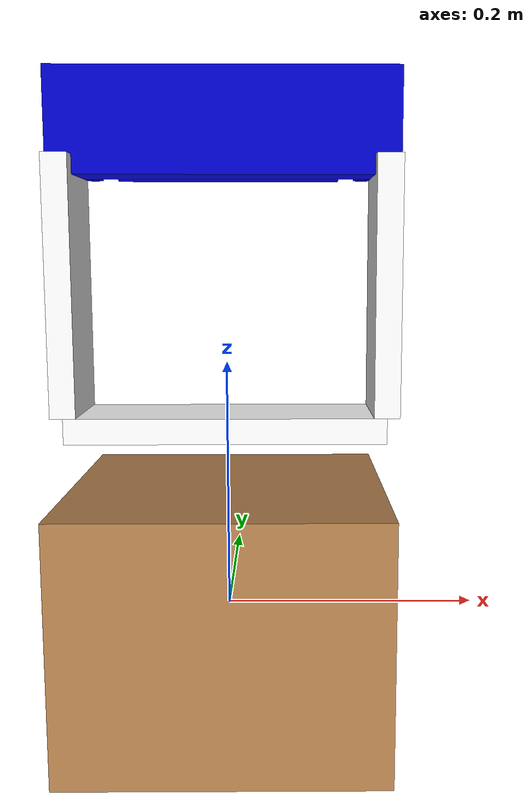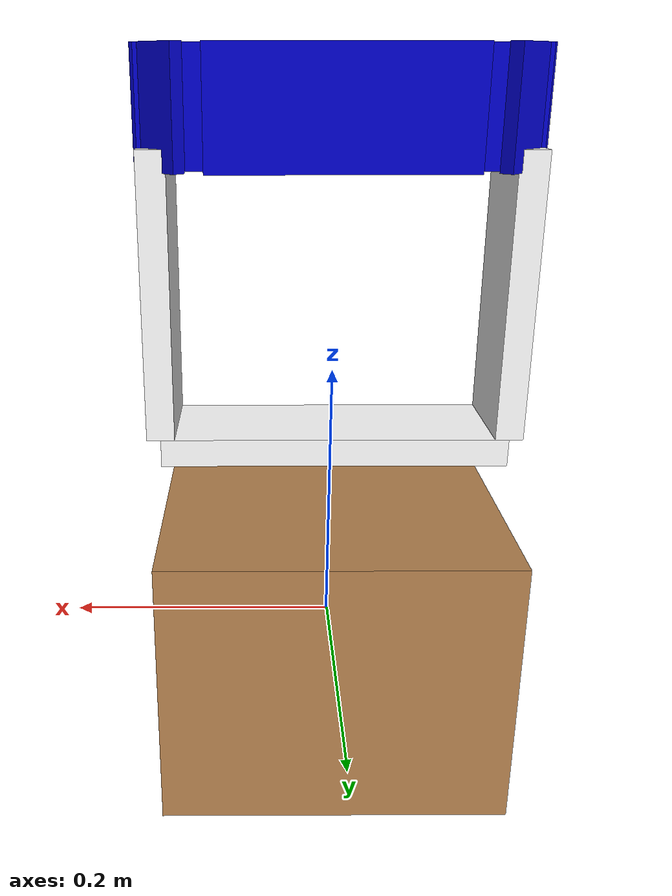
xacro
<?xml version="1.0"?>
<robot name="motor_test" xmlns:xacro="http://www.ros.org/wiki/xacro">

  <!-- Base box -->
  <link name="base_link">
    <visual>
      <geometry>
        <box size="0.25 0.25 0.2"/>
      </geometry>
      <origin xyz="0 0 0" rpy="0 0 0"/>
      <material name="wood">
        <color rgba="0.7 0.5 0.3 1.0"/>
      </material>
    </visual>
  </link>

  <!-- Rotating horizontal bar -->
  <link name="bar_link">
    <visual>
      <geometry>
        <box size="0.25 0.08 0.02"/>
      </geometry>
      <origin xyz="0 0 0" rpy="0 0 0"/>
      <material name="white">
        <color rgba="1 1 1 1"/>
      </material>
    </visual>
  </link>

  <!-- Revolute joint connecting base to bar -->
  <joint name="base_to_bar" type="revolute">
    <parent link="base_link"/>
    <child link="bar_link"/>
    <origin xyz="0 0 0.15" rpy="0 0 0"/>
    <axis xyz="0 0 1"/>
    <limit lower="-3.14" upper="3.14" effort="10" velocity="1.0"/>
  </joint>

  <!--      LEFT vertical bar          -->
  <link name="left_vertical_bar">
    <visual>
      <geometry>
        <box size="0.02 0.08 0.20"/>  <!-- width, depth, height -->
      </geometry>
      <origin xyz="0 0 0" rpy="0 0 0"/>
      <material name="white">
        <color rgba="1 1 1 1"/>
      </material>
    </visual>
  </link>

  <joint name="bar_to_left_vertical" type="fixed">
    <parent link="bar_link"/>
    <child link="left_vertical_bar"/>
    <!-- Position at left end of the bar (x = -0.125), bar is 0.02 m thick in z -->
    <origin xyz="-0.125 0 0.11" rpy="0 0 0"/>
  </joint>

  <!--      RIGHT vertical bar         -->
  <link name="right_vertical_bar">
    <visual>
      <geometry>
        <box size="0.02 0.08 0.20"/>
      </geometry>
      <origin xyz="0 0 0" rpy="0 0 0"/>
      <material name="white">
        <color rgba="1 1 1 1"/>
      </material>
    </visual>
  </link>

  <joint name="bar_to_right_vertical" type="fixed">
    <parent link="bar_link"/>
    <child link="right_vertical_bar"/>
    <!-- Position at right end of the bar (x = +0.125) -->
    <origin xyz="0.125 0 0.11" rpy="0 0 0"/>
  </joint>

  <!-- Semi-Octagon -->

  <link name="semi_octagon_bridge">
    <visual>
      <geometry>
        <box size="0.27 0.08 0.05"/>
      </geometry>
      <origin xyz="0 0 0" rpy="0 0 0"/>
      <material name="blue">
        <color rgba="0 0 0.8 1"/>
      </material>
    </visual>

    <visual>
      <geometry>
        <box size="0.04 0.08 0.01"/> </geometry>
      <origin xyz="-0.12 0 0.03" rpy="0 -0.785 0"/>
      <material name="blue"/>
    </visual>

    <visual>
      <geometry>
        <box size="0.04 0.08 0.01"/>
      </geometry>
      <origin xyz="0.12 0 0.03" rpy="0 0.785 0"/>
      <material name="blue"/>
    </visual>

    <visual>
      <geometry>
        <box size="0.18 0.08 0.01"/>
      </geometry>
      <origin xyz="0 0 0.045" rpy="0 0 0"/>
      <material name="blue"/>
    </visual>
  </link>

  <joint name="bar_to_bridge" type="fixed">
    <parent link="bar_link"/>
    <child link="semi_octagon_bridge"/>
    <origin xyz="0 0 0.235" rpy="-1.5708 0 0"/>
  </joint>

</robot>
